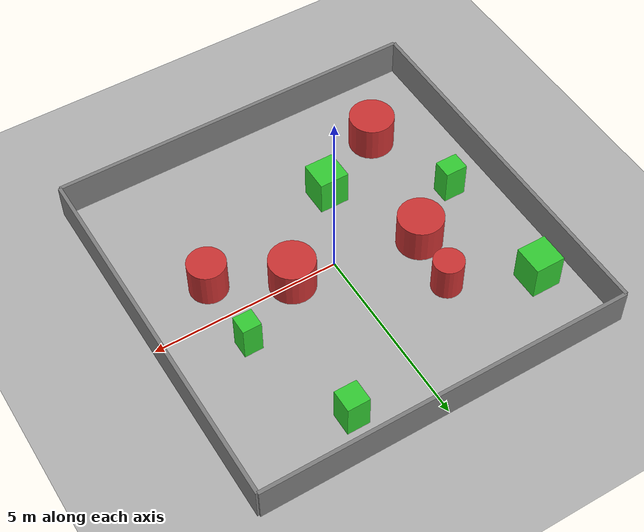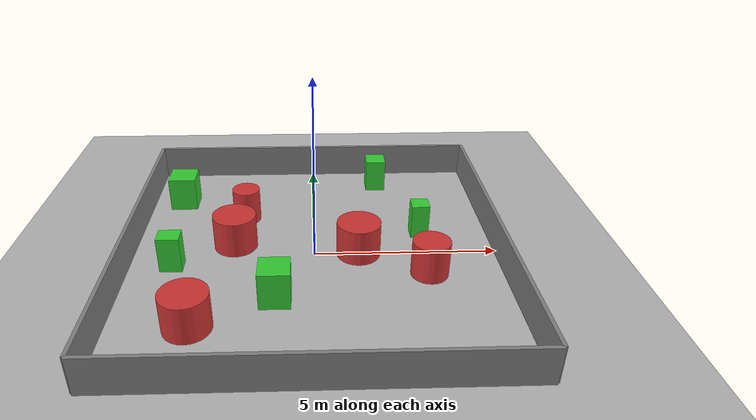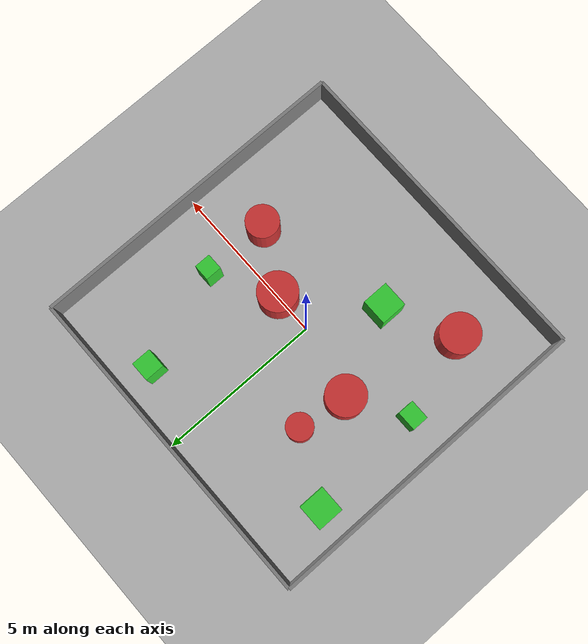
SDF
<?xml version="1.0"?>
<sdf version="1.9">
    <world name="ign_moveit2_follow_target_world">

        <!-- Physics -->
        <plugin filename="ignition-gazebo-physics-system" name="ignition::gazebo::systems::Physics">
            <engine>
                <filename>ignition-physics-dartsim-plugin</filename>
            </engine>
            <dart>
                <collision_detector>bullet</collision_detector>
            </dart>
        </plugin>
        <!-- 定义了物理引擎的参数配置 -->
        <physics name="5ms" type="ignored">
            <max_step_size>0.02</max_step_size>
            <real_time_factor>1.0</real_time_factor>
        </physics>

        <!-- User Commands (transform control) -->
        <plugin filename="ignition-gazebo-user-commands-system" name="ignition::gazebo::systems::UserCommands">
        </plugin>

        <!-- Scene -->
        <plugin filename="ignition-gazebo-scene-broadcaster-system" name="ignition::gazebo::systems::SceneBroadcaster">
        </plugin>
        <scene>
            <ambient>0.7 0.7 0.7</ambient>
            <background>0.7 0.7 0.7</background>
            <shadows>false</shadows>
        </scene>

        <!-- 光照 -->
        <light type="directional" name="sun">
            <cast_shadows>true</cast_shadows>
            <pose>0 0 10 0 0 0</pose>
            <diffuse>0.8 0.8 0.8 1</diffuse>
            <specular>0.2 0.2 0.2 1</specular>
            <direction>0.0 -0.7 -0.3</direction>
        </light>

        <!-- Models -->
        <!-- Ground -->
        <model name="ground_plane">
            <static>true</static>
            <link name="link">
                <collision name="collision">
                    <geometry>
                        <plane>
                            <normal>0 0 1</normal>
                            <size>12 12</size>
                        </plane>
                    </geometry>
                    <surface>
                        <friction>
                            <ode>
                                <mu>100</mu>
                                <mu2>50</mu2>
                            </ode>
                        </friction>
                    </surface>
                </collision>
                <visual name="visual">
                    <cast_shadows>false</cast_shadows>
                    <geometry>
                        <plane>
                            <normal>0 0 1</normal>
                            <size>100 100</size>
                        </plane>
                    </geometry>
                    <material>
                        <ambient>0.3 0.3 0.3 1</ambient>
                        <diffuse>0.7 0.7 0.7 1</diffuse>
                        <specular>0.01 0.01 0.01 1</specular>
                    </material>
                </visual>
            </link>
        </model>

        <!-- Walls around a 10x10 meter area -->
        <model name="wall_1">
            <static>true</static>
            <link name="link">
                <collision name="collision">
                    <geometry>
                        <box>
                            <size>0.1 10 1</size>
                        </box>
                    </geometry>
                </collision>
                <visual name="visual">
                    <geometry>
                        <box>
                            <size>0.1 10 1</size>
                        </box>
                    </geometry>
                    <material>
                        <ambient>0.5 0.5 0.5 1</ambient>
                        <diffuse>0.5 0.5 0.5 1</diffuse>
                    </material>
                </visual>
                <pose>-5 0 0.5 0 0 0</pose>                <!-- Left wall -->
            </link>
        </model>

        <model name="wall_2">
            <static>true</static>
            <link name="link">
                <collision name="collision">
                    <geometry>
                        <box>
                            <size>0.1 10 1</size>
                        </box>
                    </geometry>
                </collision>
                <visual name="visual">
                    <geometry>
                        <box>
                            <size>0.1 10 1</size>
                        </box>
                    </geometry>
                    <material>
                        <ambient>0.5 0.5 0.5 1</ambient>
                        <diffuse>0.5 0.5 0.5 1</diffuse>
                    </material>
                </visual>
                <pose>5 0 0.5 0 0 0</pose>                <!-- Right wall -->
            </link>
        </model>

        <model name="wall_3">
            <static>true</static>
            <link name="link">
                <collision name="collision">
                    <geometry>
                        <box>
                            <size>10 0.1 1</size>
                        </box>
                    </geometry>
                </collision>
                <visual name="visual">
                    <geometry>
                        <box>
                            <size>10 0.1 1</size>
                        </box>
                    </geometry>
                    <material>
                        <ambient>0.5 0.5 0.5 1</ambient>
                        <diffuse>0.5 0.5 0.5 1</diffuse>
                    </material>
                </visual>
                <pose>0 -5 0.5 0 0 0</pose>                <!-- Bottom wall -->
            </link>
        </model>

        <model name="wall_4">
            <static>true</static>
            <link name="link">
                <collision name="collision">
                    <geometry>
                        <box>
                            <size>10 0.1 1</size>
                        </box>
                    </geometry>
                </collision>
                <visual name="visual">
                    <geometry>
                        <box>
                            <size>10 0.1 1</size>
                        </box>
                    </geometry>
                    <material>
                        <ambient>0.5 0.5 0.5 1</ambient>
                        <diffuse>0.5 0.5 0.5 1</diffuse>
                    </material>
                </visual>
                <pose>0 5 0.5 0 0 0</pose>                <!-- Top wall -->
            </link>
        </model>

        <!-- Randomly placed columns inside the area -->
        <model name="column_1">
            <static>true</static>
            <link name="link">
                <collision name="collision">
                    <geometry>
                        <cylinder>
                            <radius>0.4</radius>
                            <length>1.0</length>
                        </cylinder>
                    </geometry>
                </collision>
                <visual name="visual">
                    <geometry>
                        <cylinder>
                            <radius>0.4</radius>
                            <length>1.0</length>
                        </cylinder>
                    </geometry>
                    <material>
                        <ambient>0.8 0.2 0.2 1</ambient>
                        <diffuse>0.8 0.2 0.2 1</diffuse>
                    </material>
                </visual>
                <pose>-2 2 0.5 0 0 0</pose>
            </link>
        </model>

        <model name="column_2">
            <static>true</static>
            <link name="link">
                <collision name="collision">
                    <geometry>
                        <cylinder>
                            <radius>0.5</radius>
                            <length>1.0</length>
                        </cylinder>
                    </geometry>
                </collision>
                <visual name="visual">
                    <geometry>
                        <cylinder>
                            <radius>0.5</radius>
                            <length>1.0</length>
                        </cylinder>
                    </geometry>
                    <material>
                        <ambient>0.8 0.2 0.2 1</ambient>
                        <diffuse>0.8 0.2 0.2 1</diffuse>
                    </material>
                </visual>
                <pose>3 -1 0.5 0 0 0</pose>
            </link>
        </model>

        <model name="column_3">
            <static>true</static>
            <link name="link">
                <collision name="collision">
                    <geometry>
                        <cylinder>
                            <radius>0.6</radius>
                            <length>1.0</length>
                        </cylinder>
                    </geometry>
                </collision>
                <visual name="visual">
                    <geometry>
                        <cylinder>
                            <radius>0.6</radius>
                            <length>1.0</length>
                        </cylinder>
                    </geometry>
                    <material>
                        <ambient>0.8 0.2 0.2 1</ambient>
                        <diffuse>0.8 0.2 0.2 1</diffuse>
                    </material>
                </visual>
                <pose>-3 -3 0.5 0 0 0</pose>
            </link>
        </model>

        <model name="column_4">
            <static>true</static>
            <link name="link">
                <collision name="collision">
                    <geometry>
                        <cylinder>
                            <radius>0.6</radius>
                            <length>1.0</length>
                        </cylinder>
                    </geometry>
                </collision>
                <visual name="visual">
                    <geometry>
                        <cylinder>
                            <radius>0.6</radius>
                            <length>1.0</length>
                        </cylinder>
                    </geometry>
                    <material>
                        <ambient>0.8 0.2 0.2 1</ambient>
                        <diffuse>0.8 0.2 0.2 1</diffuse>
                    </material>
                </visual>
                <pose>1.2 0 0.5 0 0 0</pose>
            </link>
        </model>

        <model name="column_5">
            <static>true</static>
            <link name="link">
                <collision name="collision">
                    <geometry>
                        <cylinder>
                            <radius>0.6</radius>
                            <length>1.0</length>
                        </cylinder>
                    </geometry>
                </collision>
                <visual name="visual">
                    <geometry>
                        <cylinder>
                            <radius>0.6</radius>
                            <length>1.0</length>
                        </cylinder>
                    </geometry>
                    <material>
                        <ambient>0.8 0.2 0.2 1</ambient>
                        <diffuse>0.8 0.2 0.2 1</diffuse>
                    </material>
                </visual>
                <pose>-2.2 0.5 0.5 0 0 0</pose>
            </link>
        </model>

        <!-- Randomly placed square columns inside the area -->
        <model name="square_column_1">
            <static>true</static>
            <link name="link">
                <collision name="collision">
                    <geometry>
                        <box>
                            <size>0.8 0.8 1.0</size>
                        </box>
                    </geometry>
                </collision>
                <visual name="visual">
                    <geometry>
                        <box>
                            <size>0.8 0.8 1.0</size>
                        </box>
                    </geometry>
                    <material>
                        <ambient>0.2 0.8 0.2 1</ambient>
                        <diffuse>0.2 0.8 0.2 1</diffuse>
                    </material>
                </visual>
                <pose>-4 3 0.5 0 0 0</pose>
            </link>
        </model>

        <model name="square_column_2">
            <static>true</static>
            <link name="link">
                <collision name="collision">
                    <geometry>
                        <box>
                            <size>0.6 0.6 1.0</size>
                        </box>
                    </geometry>
                </collision>
                <visual name="visual">
                    <geometry>
                        <box>
                            <size>0.6 0.6 1.0</size>
                        </box>
                    </geometry>
                    <material>
                        <ambient>0.2 0.8 0.2 1</ambient>
                        <diffuse>0.2 0.8 0.2 1</diffuse>
                    </material>
                </visual>
                <pose>2 4 0.5 0 0 0</pose>
            </link>
        </model>

        <model name="square_column_3">
            <static>true</static>
            <link name="link">
                <collision name="collision">
                    <geometry>
                        <box>
                            <size>0.8 0.8 1.0</size>
                        </box>
                    </geometry>
                </collision>
                <visual name="visual">
                    <geometry>
                        <box>
                            <size>0.8 0.8 1.0</size>
                        </box>
                    </geometry>
                    <material>
                        <ambient>0.2 0.8 0.2 1</ambient>
                        <diffuse>0.2 0.8 0.2 1</diffuse>
                    </material>
                </visual>
                <pose>-1 -2 0.5 0 0 0</pose>
            </link>
        </model>

        <model name="square_column_4">
            <static>true</static>
            <link name="link">
                <collision name="collision">
                    <geometry>
                        <box>
                            <size>0.5 0.5 1.0</size>
                        </box>
                    </geometry>
                </collision>
                <visual name="visual">
                    <geometry>
                        <box>
                            <size>0.5 0.5 1.0</size>
                        </box>
                    </geometry>
                    <material>
                        <ambient>0.2 0.8 0.2 1</ambient>
                        <diffuse>0.2 0.8 0.2 1</diffuse>
                    </material>
                </visual>
                <pose>3 1 0.5 0 0 0</pose>
            </link>
        </model>

        <model name="square_column_5">
            <static>true</static>
            <link name="link">
                <collision name="collision">
                    <geometry>
                        <box>
                            <size>0.6 0.5 1.0</size>
                        </box>
                    </geometry>
                </collision>
                <visual name="visual">
                    <geometry>
                        <box>
                            <size>0.6 0.5 1.0</size>
                        </box>
                    </geometry>
                    <material>
                        <ambient>0.2 0.8 0.2 1</ambient>
                        <diffuse>0.2 0.8 0.2 1</diffuse>
                    </material>
                </visual>
                <pose>-3.8 -0.5 0.5 0 0 0</pose>
            </link>
        </model>
    </world>
</sdf>
